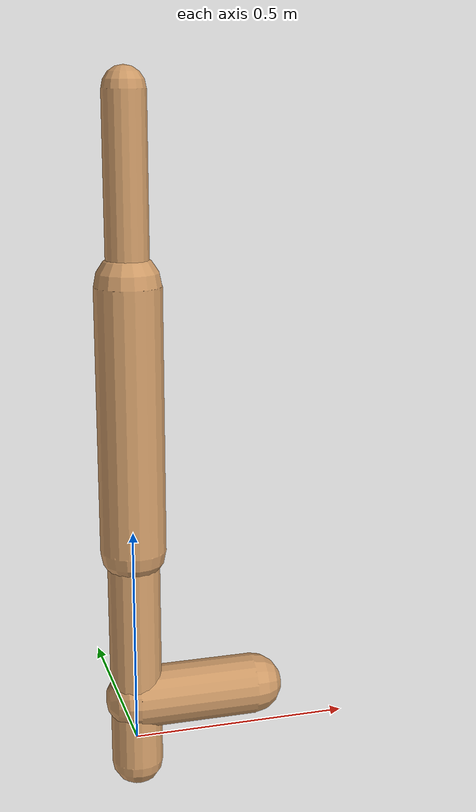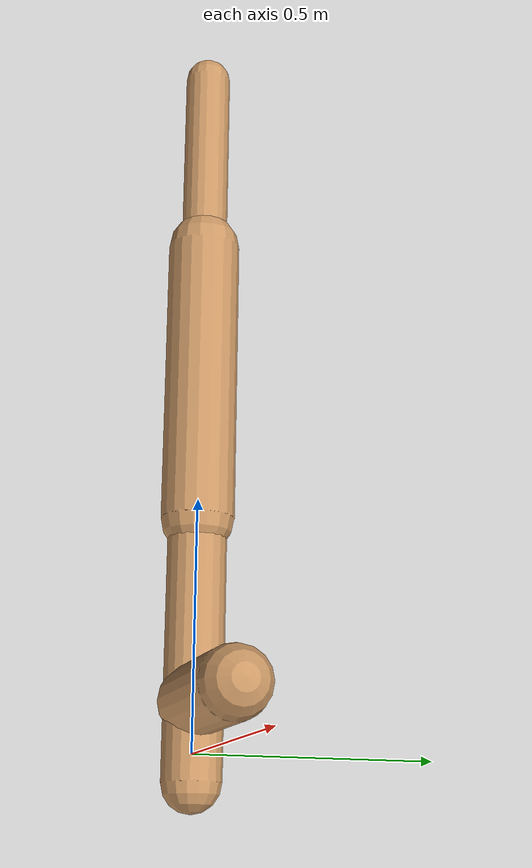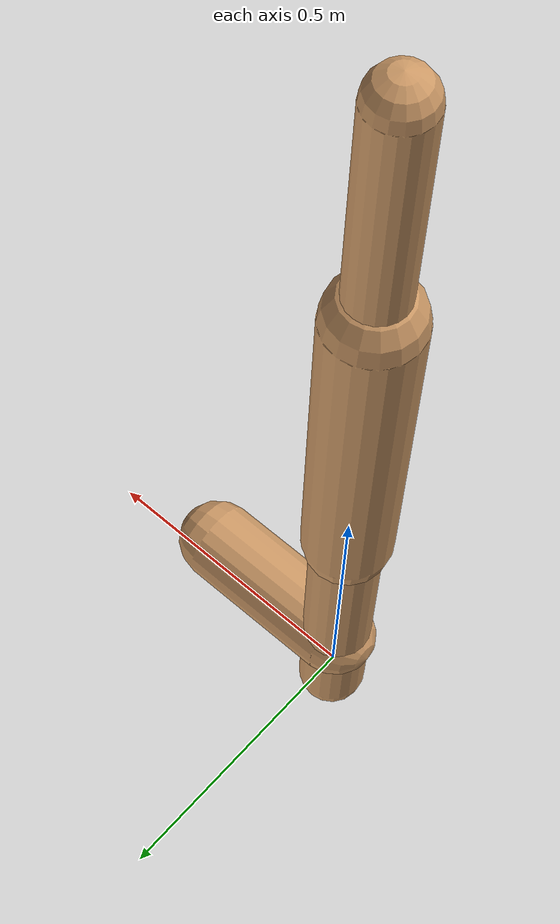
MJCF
<mujoco model="walker2d">
  <compiler angle="degree" coordinate="global" inertiafromgeom="true" />
  <default>
    <joint armature="0.01" damping=".1" limited="true" />
    <geom conaffinity="0" condim="3" contype="1" density="1000" friction="0.8 .1 .1" rgba="0.8 0.6 .4 1" />
  </default>
  <option integrator="RK4" timestep="0.002" />
  <worldbody>

    <body name="torso" pos="0 0 0.2930829689815987">
      <joint armature="0" axis="1 0 0" damping="0" limited="false" name="ignorex" pos="0 0 0" stiffness="0" type="slide" />
      <joint armature="0" axis="0 0 1" damping="0" limited="false" name="ignorez" pos="0 0 0" ref="1.25" stiffness="0" type="slide" />
      <joint armature="0" axis="0 1 0" damping="0" limited="false" name="ignorey" pos="0 0 0" stiffness="0" type="hinge" />
      <geom fromto="0 0 1.45 0 0 1.05" name="torso_geom" size="0.04696549645211337" type="capsule" />
      <body name="thigh">
        <joint axis="0 -1 0" name="thigh_joint" pos="0 0 1.05" range="-150 0" type="hinge" />
        <geom fromto="0.0 0.0 1.05 0.0 0.0 0.4611712252192427" name="thigh_geom" size="0.07356904342280404" type="capsule" />
        <body name="leg" pos="0.0 0.0 -0.13882877478075728">
          <joint axis="0 -1 0" name="leg_joint" pos="0 0 0.6" range="-150 0" type="hinge" />
          <geom fromto="0.0 0.0 0.6 0.0 0.0 -0.054254194200841405" name="leg_geom" size="0.05885523473824323" type="capsule" />
          <body name="foot" pos="0.0 0.0 -0.1542541942008414">
            <joint axis="0 -1 0" name="foot_joint" pos="0 0 0.1" range="-45 45" type="hinge" />
            <geom fromto="-0.0 0.0 0.09999999999999999 0.2750250799622224 0.0 0.09999999999999999" name="foot_geom" size="0.07037001986871036" type="capsule" />
          </body>
        </body>
      </body>

      <body name="thigh_left">
        <joint axis="0 -1 0" name="thigh_left_joint" pos="0 0 1.05" range="-150 0" type="hinge" />
        <geom fromto="0.0 0.0 1.05 0.0 0.0 0.4611712252192427" name="thigh_left_geom" rgba=".7 .3 .6 1" size="0.07356904342280404" type="capsule" />
        <body name="leg_left" pos="0.0 0.0 -0.13882877478075728">
          <joint axis="0 -1 0" name="leg_left_joint" pos="0 0 0.6" range="-150 0" type="hinge" />
          <geom fromto="0.0 0.0 0.6 0.0 0.0 -0.054254194200841405" name="leg_left_geom" rgba=".7 .3 .6 1" size="0.05885523473824323" type="capsule" />
          <body name="foot_left" pos="0.0 0.0 -0.1542541942008414">
            <joint axis="0 -1 0" name="foot_left_joint" pos="0 0 0.1" range="-45 45" type="hinge" />
            <geom fromto="-0.0 0.0 0.09999999999999999 0.2750250799622224 0.0 0.09999999999999999" name="foot_left_geom" rgba=".7 .3 .6 1" size="0.07037001986871036" type="capsule" />
          </body>
        </body>
      </body>
    </body>
  </worldbody>
  <actuator>

    <motor ctrllimited="true" ctrlrange="-1.0 1.0" gear="100" joint="thigh_joint" />
    <motor ctrllimited="true" ctrlrange="-1.0 1.0" gear="100" joint="leg_joint" />
    <motor ctrllimited="true" ctrlrange="-1.0 1.0" gear="100" joint="foot_joint" />
    <motor ctrllimited="true" ctrlrange="-1.0 1.0" gear="100" joint="thigh_left_joint" />
    <motor ctrllimited="true" ctrlrange="-1.0 1.0" gear="100" joint="leg_left_joint" />
    <motor ctrllimited="true" ctrlrange="-1.0 1.0" gear="100" joint="foot_left_joint" />

  </actuator>
</mujoco>
